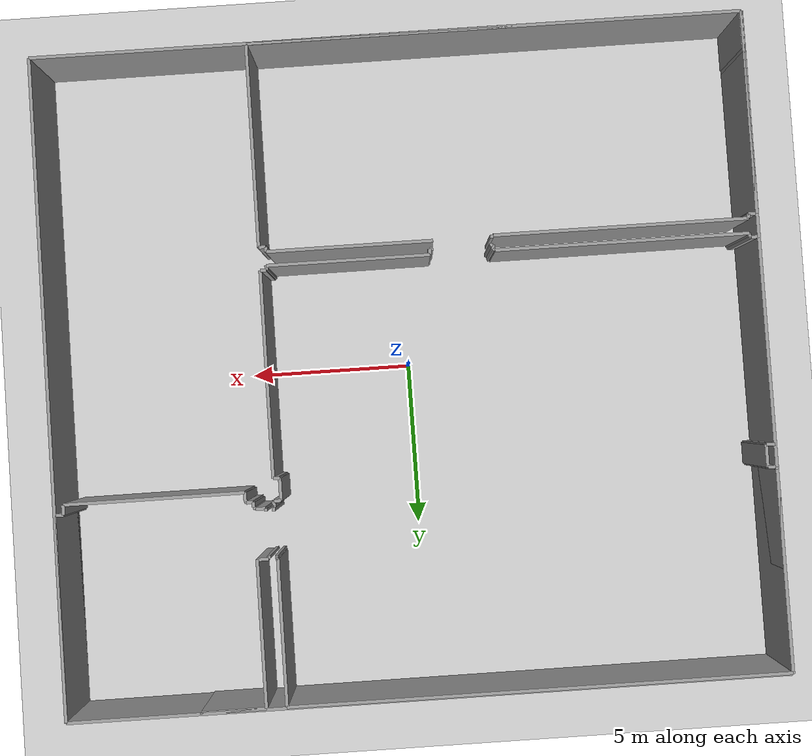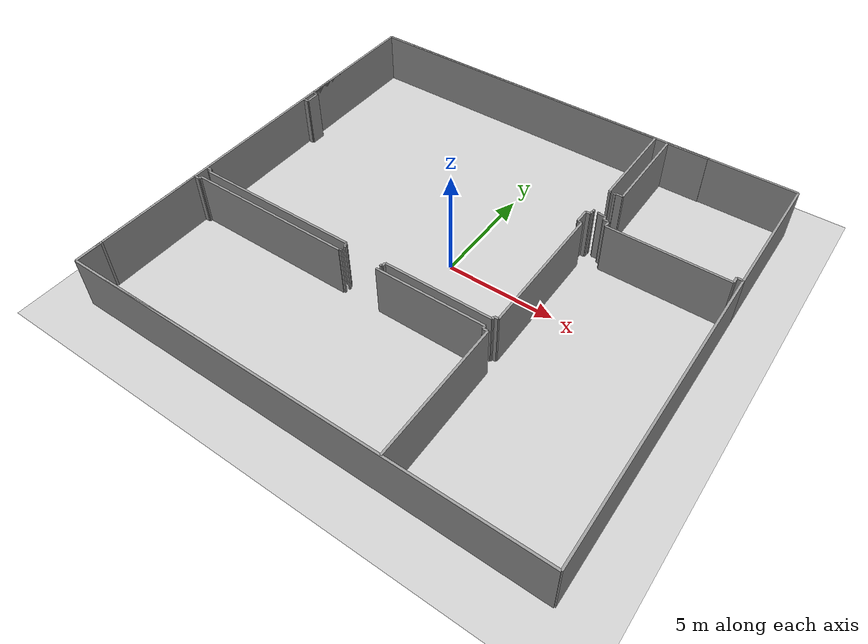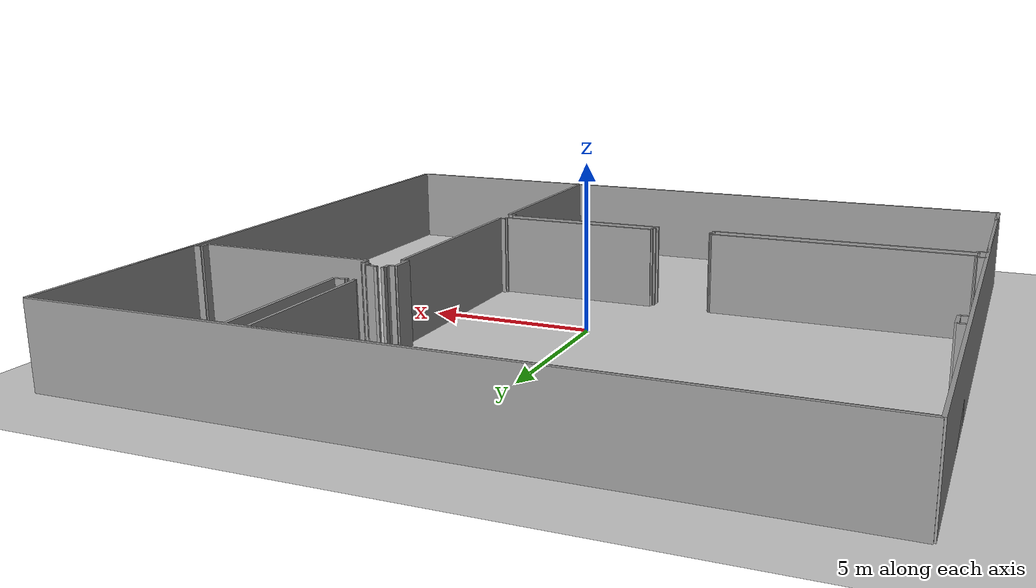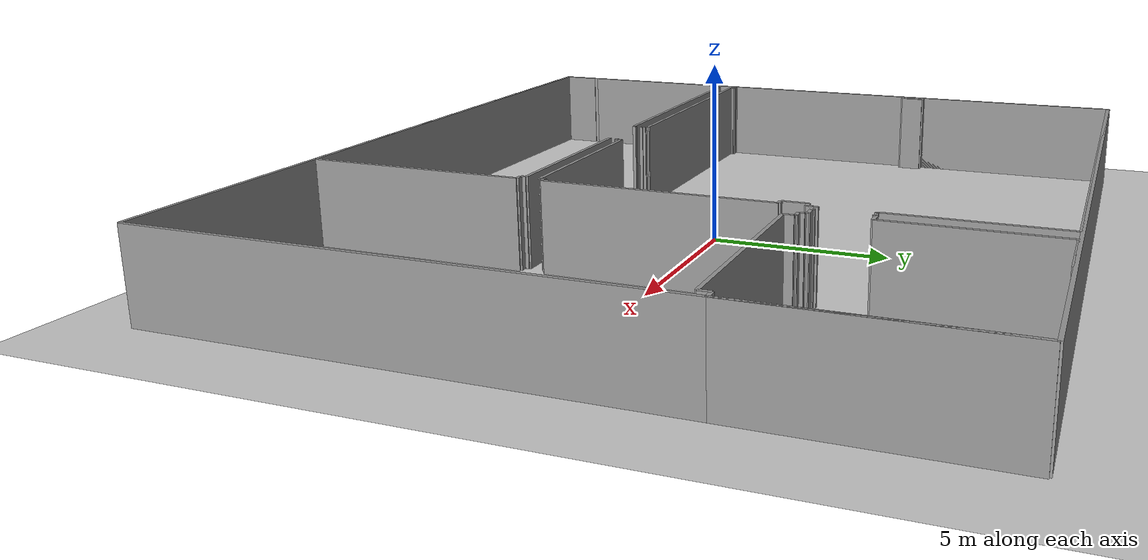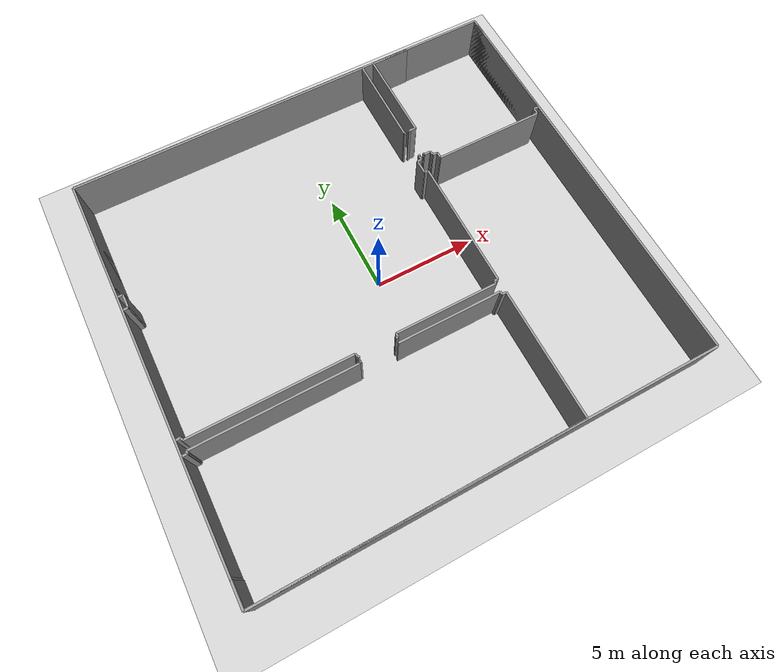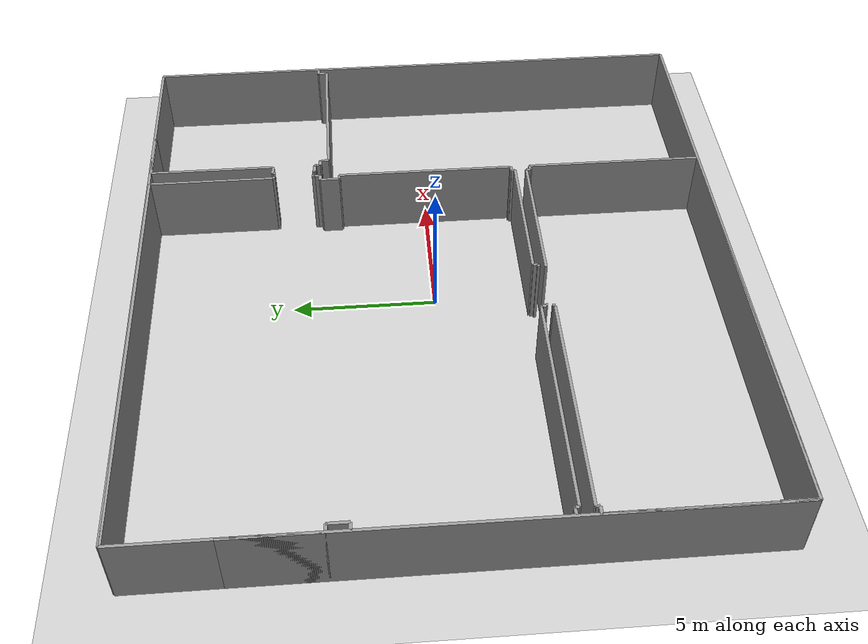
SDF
<sdf version="1.6">
  <world name="default">
    <light name="sun" type="directional">
      <cast_shadows>1</cast_shadows>
      <pose frame="">0 0 10 0 -0 0</pose>
      <diffuse>0.8 0.8 0.8 1</diffuse>
      <specular>0.1 0.1 0.1 1</specular>
      <attenuation>
        <range>1000</range>
        <constant>0.9</constant>
        <linear>0.01</linear>
        <quadratic>0.001</quadratic>
      </attenuation>
      <direction>-0.5 0.5 -1</direction>
    </light>
    <model name="ground_plane">
      <static>1</static>
      <link name="link">
        <collision name="collision">
          <geometry>
            <plane>
              <normal>0 0 1</normal>
              <size>100 100</size>
            </plane>
          </geometry>
          <surface>
            <friction>
              <ode>
                <mu>100</mu>
                <mu2>50</mu2>
              </ode>
              <torsional>
                <ode />
              </torsional>
            </friction>
            <contact>
              <ode />
            </contact>
            <bounce />
          </surface>
          <max_contacts>10</max_contacts>
        </collision>
        <visual name="visual">
          <cast_shadows>0</cast_shadows>
          <geometry>
            <plane>
              <normal>0 0 1</normal>
              <size>100 100</size>
            </plane>
          </geometry>
          <material>
            <script>
              <uri>file://media/materials/scripts/gazebo.material</uri>
              <name>Gazebo/Grey</name>
            </script>
          </material>
        </visual>
        <self_collide>0</self_collide>
        <kinematic>0</kinematic>
        <gravity>1</gravity>
      </link>
    </model>
    <gravity>0 0 -9.8</gravity>
    <magnetic_field>6e-06 2.3e-05 -4.2e-05</magnetic_field>
    <atmosphere type="adiabatic" />
    <physics default="0" name="default_physics" type="ode">
      <max_step_size>0.001</max_step_size>
      <real_time_factor>1</real_time_factor>
      <real_time_update_rate>1000</real_time_update_rate>
    </physics>
    <scene>
      <ambient>0.4 0.4 0.4 1</ambient>
      <background>0.7 0.7 0.7 1</background>
      <shadows>1</shadows>
    </scene>
    <spherical_coordinates>
      <surface_model>EARTH_WGS84</surface_model>
      <latitude_deg>0</latitude_deg>
      <longitude_deg>0</longitude_deg>
      <elevation>0</elevation>
      <heading_deg>0</heading_deg>
    </spherical_coordinates>
  <model name="50055647">
		<static>1</static>
		<link name="Wall_0">
			<collision name="Wall_0_Collision">
				<geometry>
					<box>
						<size>1.15759305037 0.1 2.5</size>
					</box>
				</geometry>
				<pose frame="">0.578796525187 0 1.25 0 0 0</pose>
			</collision>
			<visual name="Wall_0_Visual">
				<pose frame="">0.578796525187 0 1.25 0 0 0</pose>
				<geometry>
					<box>
						<size>1.15759305037 0.1 2.5</size>
					</box>
				</geometry>
				<material>
					<script>
						<uri>file://media/materials/scripts/gazebo.material</uri>
						<name>Gazebo/Grey</name>
					</script>
					<ambient>1 1 1 1</ambient>
				</material>
			</visual>
			<pose frame="">0.0244024885454 -20.1845438196 0 0 0 1.57079632679</pose>
		</link>
		<link name="Wall_1">
			<collision name="Wall_1_Collision">
				<geometry>
					<box>
						<size>0.0222418515388 0.1 2.5</size>
					</box>
				</geometry>
				<pose frame="">0.0111209257694 0 1.25 0 0 0</pose>
			</collision>
			<visual name="Wall_1_Visual">
				<pose frame="">0.0111209257694 0 1.25 0 0 0</pose>
				<geometry>
					<box>
						<size>0.0222418515388 0.1 2.5</size>
					</box>
				</geometry>
				<material>
					<script>
						<uri>file://media/materials/scripts/gazebo.material</uri>
						<name>Gazebo/Grey</name>
					</script>
					<ambient>1 1 1 1</ambient>
				</material>
			</visual>
			<pose frame="">0.0244024885454 -19.0269507693 0 0 0 3.14159265359</pose>
		</link>
		<link name="Wall_2">
			<collision name="Wall_2_Collision">
				<geometry>
					<box>
						<size>0.113115702112 0.1 2.5</size>
					</box>
				</geometry>
				<pose frame="">0.0565578510559 0 1.25 0 0 0</pose>
			</collision>
			<visual name="Wall_2_Visual">
				<pose frame="">0.0565578510559 0 1.25 0 0 0</pose>
				<geometry>
					<box>
						<size>0.113115702112 0.1 2.5</size>
					</box>
				</geometry>
				<material>
					<script>
						<uri>file://media/materials/scripts/gazebo.material</uri>
						<name>Gazebo/Grey</name>
					</script>
					<ambient>1 1 1 1</ambient>
				</material>
			</visual>
			<pose frame="">0.00216063700663 -19.0269507693 0 0 0 1.57079632679</pose>
		</link>
		<link name="Wall_3">
			<collision name="Wall_3_Collision">
				<geometry>
					<box>
						<size>4.98713150018 0.1 2.5</size>
					</box>
				</geometry>
				<pose frame="">2.49356575009 0 1.25 0 0 0</pose>
			</collision>
			<visual name="Wall_3_Visual">
				<pose frame="">2.49356575009 0 1.25 0 0 0</pose>
				<geometry>
					<box>
						<size>4.98713150018 0.1 2.5</size>
					</box>
				</geometry>
				<material>
					<script>
						<uri>file://media/materials/scripts/gazebo.material</uri>
						<name>Gazebo/Grey</name>
					</script>
					<ambient>1 1 1 1</ambient>
				</material>
			</visual>
			<pose frame="">0.00216063700663 -18.9138350671 0 0 0 1.57079632679</pose>
		</link>
		<link name="Wall_4">
			<collision name="Wall_4_Collision">
				<geometry>
					<box>
						<size>0.268300277705 0.1 2.5</size>
					</box>
				</geometry>
				<pose frame="">0.134150138853 0 1.25 0 0 0</pose>
			</collision>
			<visual name="Wall_4_Visual">
				<pose frame="">0.134150138853 0 1.25 0 0 0</pose>
				<geometry>
					<box>
						<size>0.268300277705 0.1 2.5</size>
					</box>
				</geometry>
				<material>
					<script>
						<uri>file://media/materials/scripts/gazebo.material</uri>
						<name>Gazebo/Grey</name>
					</script>
					<ambient>1 1 1 1</ambient>
				</material>
			</visual>
			<pose frame="">0.00216063700663 -13.926703567 0 0 0 0.0</pose>
		</link>
		<link name="Wall_5">
			<collision name="Wall_5_Collision">
				<geometry>
					<box>
						<size>0.128748546336 0.1 2.5</size>
					</box>
				</geometry>
				<pose frame="">0.0643742731681 0 1.25 0 0 0</pose>
			</collision>
			<visual name="Wall_5_Visual">
				<pose frame="">0.0643742731681 0 1.25 0 0 0</pose>
				<geometry>
					<box>
						<size>0.128748546336 0.1 2.5</size>
					</box>
				</geometry>
				<material>
					<script>
						<uri>file://media/materials/scripts/gazebo.material</uri>
						<name>Gazebo/Grey</name>
					</script>
					<ambient>1 1 1 1</ambient>
				</material>
			</visual>
			<pose frame="">0.270460914712 -13.926703567 0 0 0 1.57079632679</pose>
		</link>
		<link name="Wall_6">
			<collision name="Wall_6_Collision">
				<geometry>
					<box>
						<size>7.79443445326 0.1 2.5</size>
					</box>
				</geometry>
				<pose frame="">3.89721722663 0 1.25 0 0 0</pose>
			</collision>
			<visual name="Wall_6_Visual">
				<pose frame="">3.89721722663 0 1.25 0 0 0</pose>
				<geometry>
					<box>
						<size>7.79443445326 0.1 2.5</size>
					</box>
				</geometry>
				<material>
					<script>
						<uri>file://media/materials/scripts/gazebo.material</uri>
						<name>Gazebo/Grey</name>
					</script>
					<ambient>1 1 1 1</ambient>
				</material>
			</visual>
			<pose frame="">0.270460914712 -13.7979550206 0 0 0 0.0</pose>
		</link>
		<link name="Wall_7">
			<collision name="Wall_7_Collision">
				<geometry>
					<box>
						<size>0.0374934068797 0.1 2.5</size>
					</box>
				</geometry>
				<pose frame="">0.0187467034399 0 1.25 0 0 0</pose>
			</collision>
			<visual name="Wall_7_Visual">
				<pose frame="">0.0187467034399 0 1.25 0 0 0</pose>
				<geometry>
					<box>
						<size>0.0374934068797 0.1 2.5</size>
					</box>
				</geometry>
				<material>
					<script>
						<uri>file://media/materials/scripts/gazebo.material</uri>
						<name>Gazebo/Grey</name>
					</script>
					<ambient>1 1 1 1</ambient>
				</material>
			</visual>
			<pose frame="">8.06489536798 -13.7979550206 0 0 0 1.57079632679</pose>
		</link>
		<link name="Wall_8">
			<collision name="Wall_8_Collision">
				<geometry>
					<box>
						<size>0.0955764134697 0.1 2.5</size>
					</box>
				</geometry>
				<pose frame="">0.0477882067348 0 1.25 0 0 0</pose>
			</collision>
			<visual name="Wall_8_Visual">
				<pose frame="">0.0477882067348 0 1.25 0 0 0</pose>
				<geometry>
					<box>
						<size>0.0955764134697 0.1 2.5</size>
					</box>
				</geometry>
				<material>
					<script>
						<uri>file://media/materials/scripts/gazebo.material</uri>
						<name>Gazebo/Grey</name>
					</script>
					<ambient>1 1 1 1</ambient>
				</material>
			</visual>
			<pose frame="">8.06489536798 -13.7604616137 0 0 0 0.0</pose>
		</link>
		<link name="Wall_9">
			<collision name="Wall_9_Collision">
				<geometry>
					<box>
						<size>5.08906272838 0.1 2.5</size>
					</box>
				</geometry>
				<pose frame="">2.54453136419 0 1.25 0 0 0</pose>
			</collision>
			<visual name="Wall_9_Visual">
				<pose frame="">2.54453136419 0 1.25 0 0 0</pose>
				<geometry>
					<box>
						<size>5.08906272838 0.1 2.5</size>
					</box>
				</geometry>
				<material>
					<script>
						<uri>file://media/materials/scripts/gazebo.material</uri>
						<name>Gazebo/Grey</name>
					</script>
					<ambient>1 1 1 1</ambient>
				</material>
			</visual>
			<pose frame="">9.90550390503 -13.7604616137 0 0 0 0.0</pose>
		</link>
		<link name="Wall_10">
			<collision name="Wall_10_Collision">
				<geometry>
					<box>
						<size>0.148194279396 0.1 2.5</size>
					</box>
				</geometry>
				<pose frame="">0.0740971396979 0 1.25 0 0 0</pose>
			</collision>
			<visual name="Wall_10_Visual">
				<pose frame="">0.0740971396979 0 1.25 0 0 0</pose>
				<geometry>
					<box>
						<size>0.148194279396 0.1 2.5</size>
					</box>
				</geometry>
				<material>
					<script>
						<uri>file://media/materials/scripts/gazebo.material</uri>
						<name>Gazebo/Grey</name>
					</script>
					<ambient>1 1 1 1</ambient>
				</material>
			</visual>
			<pose frame="">14.9945666334 -13.7604616137 0 0 0 -1.57079632679</pose>
		</link>
		<link name="Wall_11">
			<collision name="Wall_11_Collision">
				<geometry>
					<box>
						<size>0.218605626553 0.1 2.5</size>
					</box>
				</geometry>
				<pose frame="">0.109302813276 0 1.25 0 0 0</pose>
			</collision>
			<visual name="Wall_11_Visual">
				<pose frame="">0.109302813276 0 1.25 0 0 0</pose>
				<geometry>
					<box>
						<size>0.218605626553 0.1 2.5</size>
					</box>
				</geometry>
				<material>
					<script>
						<uri>file://media/materials/scripts/gazebo.material</uri>
						<name>Gazebo/Grey</name>
					</script>
					<ambient>1 1 1 1</ambient>
				</material>
			</visual>
			<pose frame="">14.9945666334 -13.9086558931 0 0 0 0.0</pose>
		</link>
		<link name="Wall_12">
			<collision name="Wall_12_Collision">
				<geometry>
					<box>
						<size>6.27232923024 0.1 2.5</size>
					</box>
				</geometry>
				<pose frame="">3.13616461512 0 1.25 0 0 0</pose>
			</collision>
			<visual name="Wall_12_Visual">
				<pose frame="">3.13616461512 0 1.25 0 0 0</pose>
				<geometry>
					<box>
						<size>6.27232923024 0.1 2.5</size>
					</box>
				</geometry>
				<material>
					<script>
						<uri>file://media/materials/scripts/gazebo.material</uri>
						<name>Gazebo/Grey</name>
					</script>
					<ambient>1 1 1 1</ambient>
				</material>
			</visual>
			<pose frame="">15.21317226 -13.9086558931 0 0 0 -1.57079632679</pose>
		</link>
		<link name="Wall_13">
			<collision name="Wall_13_Collision">
				<geometry>
					<box>
						<size>15.1887701883 0.1 2.5</size>
					</box>
				</geometry>
				<pose frame="">7.59438509416 0 1.25 0 0 0</pose>
			</collision>
			<visual name="Wall_13_Visual">
				<pose frame="">7.59438509416 0 1.25 0 0 0</pose>
				<geometry>
					<box>
						<size>15.1887701883 0.1 2.5</size>
					</box>
				</geometry>
				<material>
					<script>
						<uri>file://media/materials/scripts/gazebo.material</uri>
						<name>Gazebo/Grey</name>
					</script>
					<ambient>1 1 1 1</ambient>
				</material>
			</visual>
			<pose frame="">15.21317226 -20.1809851234 0 0 0 -3.14135835573</pose>
		</link>
		<link name="Wall_14">
			<collision name="Wall_14_Collision">
				<geometry>
					<box>
						<size>0.278156418148 0.1 2.5</size>
					</box>
				</geometry>
				<pose frame="">0.139078209074 0 1.25 0 0 0</pose>
			</collision>
			<visual name="Wall_14_Visual">
				<pose frame="">0.139078209074 0 1.25 0 0 0</pose>
				<geometry>
					<box>
						<size>0.278156418148 0.1 2.5</size>
					</box>
				</geometry>
				<material>
					<script>
						<uri>file://media/materials/scripts/gazebo.material</uri>
						<name>Gazebo/Grey</name>
					</script>
					<ambient>1 1 1 1</ambient>
				</material>
			</visual>
			<pose frame="">16.101321166 -6.52029410083 0 0 0 1.59318746518</pose>
		</link>
		<link name="Wall_15">
			<collision name="Wall_15_Collision">
				<geometry>
					<box>
						<size>0.0446658043129 0.1 2.5</size>
					</box>
				</geometry>
				<pose frame="">0.0223329021564 0 1.25 0 0 0</pose>
			</collision>
			<visual name="Wall_15_Visual">
				<pose frame="">0.0223329021564 0 1.25 0 0 0</pose>
				<geometry>
					<box>
						<size>0.0446658043129 0.1 2.5</size>
					</box>
				</geometry>
				<material>
					<script>
						<uri>file://media/materials/scripts/gazebo.material</uri>
						<name>Gazebo/Grey</name>
					</script>
					<ambient>1 1 1 1</ambient>
				</material>
			</visual>
			<pose frame="">16.0950934476 -6.24220740844 0 0 0 2.35820655991</pose>
		</link>
		<link name="Wall_16">
			<collision name="Wall_16_Collision">
				<geometry>
					<box>
						<size>0.208565019287 0.1 2.5</size>
					</box>
				</geometry>
				<pose frame="">0.104282509643 0 1.25 0 0 0</pose>
			</collision>
			<visual name="Wall_16_Visual">
				<pose frame="">0.104282509643 0 1.25 0 0 0</pose>
				<geometry>
					<box>
						<size>0.208565019287 0.1 2.5</size>
					</box>
				</geometry>
				<material>
					<script>
						<uri>file://media/materials/scripts/gazebo.material</uri>
						<name>Gazebo/Grey</name>
					</script>
					<ambient>1 1 1 1</ambient>
				</material>
			</visual>
			<pose frame="">16.0634464702 -6.21068752741 0 0 0 3.14159265359</pose>
		</link>
		<link name="Wall_17">
			<collision name="Wall_17_Collision">
				<geometry>
					<box>
						<size>0.151625879347 0.1 2.5</size>
					</box>
				</geometry>
				<pose frame="">0.0758129396737 0 1.25 0 0 0</pose>
			</collision>
			<visual name="Wall_17_Visual">
				<pose frame="">0.0758129396737 0 1.25 0 0 0</pose>
				<geometry>
					<box>
						<size>0.151625879347 0.1 2.5</size>
					</box>
				</geometry>
				<material>
					<script>
						<uri>file://media/materials/scripts/gazebo.material</uri>
						<name>Gazebo/Grey</name>
					</script>
					<ambient>1 1 1 1</ambient>
				</material>
			</visual>
			<pose frame="">15.8548814509 -6.21068752741 0 0 0 1.57079632679</pose>
		</link>
		<link name="Wall_18">
			<collision name="Wall_18_Collision">
				<geometry>
					<box>
						<size>0.0760788906811 0.1 2.5</size>
					</box>
				</geometry>
				<pose frame="">0.0380394453406 0 1.25 0 0 0</pose>
			</collision>
			<visual name="Wall_18_Visual">
				<pose frame="">0.0380394453406 0 1.25 0 0 0</pose>
				<geometry>
					<box>
						<size>0.0760788906811 0.1 2.5</size>
					</box>
				</geometry>
				<material>
					<script>
						<uri>file://media/materials/scripts/gazebo.material</uri>
						<name>Gazebo/Grey</name>
					</script>
					<ambient>1 1 1 1</ambient>
				</material>
			</visual>
			<pose frame="">15.8548814509 -6.05906164806 0 0 0 2.29591258653</pose>
		</link>
		<link name="Wall_19">
			<collision name="Wall_19_Collision">
				<geometry>
					<box>
						<size>0.30960657342 0.1 2.5</size>
					</box>
				</geometry>
				<pose frame="">0.15480328671 0 1.25 0 0 0</pose>
			</collision>
			<visual name="Wall_19_Visual">
				<pose frame="">0.15480328671 0 1.25 0 0 0</pose>
				<geometry>
					<box>
						<size>0.30960657342 0.1 2.5</size>
					</box>
				</geometry>
				<material>
					<script>
						<uri>file://media/materials/scripts/gazebo.material</uri>
						<name>Gazebo/Grey</name>
					</script>
					<ambient>1 1 1 1</ambient>
				</material>
			</visual>
			<pose frame="">15.804424222 -6.00212250812 0 0 0 3.14159265359</pose>
		</link>
		<link name="Wall_20">
			<collision name="Wall_20_Collision">
				<geometry>
					<box>
						<size>0.0821042062519 0.1 2.5</size>
					</box>
				</geometry>
				<pose frame="">0.0410521031259 0 1.25 0 0 0</pose>
			</collision>
			<visual name="Wall_20_Visual">
				<pose frame="">0.0410521031259 0 1.25 0 0 0</pose>
				<geometry>
					<box>
						<size>0.0821042062519 0.1 2.5</size>
					</box>
				</geometry>
				<material>
					<script>
						<uri>file://media/materials/scripts/gazebo.material</uri>
						<name>Gazebo/Grey</name>
					</script>
					<ambient>1 1 1 1</ambient>
				</material>
			</visual>
			<pose frame="">15.4948176486 -6.00212250812 0 0 0 1.57079632679</pose>
		</link>
		<link name="Wall_21">
			<collision name="Wall_21_Collision">
				<geometry>
					<box>
						<size>0.0903654653949 0.1 2.5</size>
					</box>
				</geometry>
				<pose frame="">0.0451827326974 0 1.25 0 0 0</pose>
			</collision>
			<visual name="Wall_21_Visual">
				<pose frame="">0.0451827326974 0 1.25 0 0 0</pose>
				<geometry>
					<box>
						<size>0.0903654653949 0.1 2.5</size>
					</box>
				</geometry>
				<material>
					<script>
						<uri>file://media/materials/scripts/gazebo.material</uri>
						<name>Gazebo/Grey</name>
					</script>
					<ambient>1 1 1 1</ambient>
				</material>
			</visual>
			<pose frame="">15.4948176486 -4.5702556542 0 0 0 1.57079632679</pose>
		</link>
		<link name="Wall_22">
			<collision name="Wall_22_Collision">
				<geometry>
					<box>
						<size>0.353073506142 0.1 2.5</size>
					</box>
				</geometry>
				<pose frame="">0.176536753071 0 1.25 0 0 0</pose>
			</collision>
			<visual name="Wall_22_Visual">
				<pose frame="">0.176536753071 0 1.25 0 0 0</pose>
				<geometry>
					<box>
						<size>0.353073506142 0.1 2.5</size>
					</box>
				</geometry>
				<material>
					<script>
						<uri>file://media/materials/scripts/gazebo.material</uri>
						<name>Gazebo/Grey</name>
					</script>
					<ambient>1 1 1 1</ambient>
				</material>
			</visual>
			<pose frame="">15.4948176486 -4.4798901888 0 0 0 0.0</pose>
		</link>
		<link name="Wall_23">
			<collision name="Wall_23_Collision">
				<geometry>
					<box>
						<size>4.44684515223 0.1 2.5</size>
					</box>
				</geometry>
				<pose frame="">2.22342257611 0 1.25 0 0 0</pose>
			</collision>
			<visual name="Wall_23_Visual">
				<pose frame="">2.22342257611 0 1.25 0 0 0</pose>
				<geometry>
					<box>
						<size>4.44684515223 0.1 2.5</size>
					</box>
				</geometry>
				<material>
					<script>
						<uri>file://media/materials/scripts/gazebo.material</uri>
						<name>Gazebo/Grey</name>
					</script>
					<ambient>1 1 1 1</ambient>
				</material>
			</visual>
			<pose frame="">15.8478911547 -4.4798901888 0 0 0 1.57079632679</pose>
		</link>
		<link name="Wall_24">
			<collision name="Wall_24_Collision">
				<geometry>
					<box>
						<size>1.94749652074 0.1 2.5</size>
					</box>
				</geometry>
				<pose frame="">0.973748260369 0 1.25 0 0 0</pose>
			</collision>
			<visual name="Wall_24_Visual">
				<pose frame="">0.973748260369 0 1.25 0 0 0</pose>
				<geometry>
					<box>
						<size>1.94749652074 0.1 2.5</size>
					</box>
				</geometry>
				<material>
					<script>
						<uri>file://media/materials/scripts/gazebo.material</uri>
						<name>Gazebo/Grey</name>
					</script>
					<ambient>1 1 1 1</ambient>
				</material>
			</visual>
			<pose frame="">15.8478911547 -0.033045036572 0 0 0 0.0</pose>
		</link>
		<link name="Wall_25">
			<collision name="Wall_25_Collision">
				<geometry>
					<box>
						<size>0.033045036572 0.1 2.5</size>
					</box>
				</geometry>
				<pose frame="">0.016522518286 0 1.25 0 0 0</pose>
			</collision>
			<visual name="Wall_25_Visual">
				<pose frame="">0.016522518286 0 1.25 0 0 0</pose>
				<geometry>
					<box>
						<size>0.033045036572 0.1 2.5</size>
					</box>
				</geometry>
				<material>
					<script>
						<uri>file://media/materials/scripts/gazebo.material</uri>
						<name>Gazebo/Grey</name>
					</script>
					<ambient>1 1 1 1</ambient>
				</material>
			</visual>
			<pose frame="">17.7953876755 -0.033045036572 0 0 0 1.57079632679</pose>
		</link>
		<link name="Wall_26">
			<collision name="Wall_26_Collision">
				<geometry>
					<box>
						<size>6.20916237187 0.1 2.5</size>
					</box>
				</geometry>
				<pose frame="">3.10458118594 0 1.25 0 0 0</pose>
			</collision>
			<visual name="Wall_26_Visual">
				<pose frame="">3.10458118594 0 1.25 0 0 0</pose>
				<geometry>
					<box>
						<size>6.20916237187 0.1 2.5</size>
					</box>
				</geometry>
				<material>
					<script>
						<uri>file://media/materials/scripts/gazebo.material</uri>
						<name>Gazebo/Grey</name>
					</script>
					<ambient>1 1 1 1</ambient>
				</material>
			</visual>
			<pose frame="">21.8706032626 -0.0 0 0 0 -1.57079632679</pose>
		</link>
		<link name="Wall_27">
			<collision name="Wall_27_Collision">
				<geometry>
					<box>
						<size>0.272875744308 0.1 2.5</size>
					</box>
				</geometry>
				<pose frame="">0.136437872154 0 1.25 0 0 0</pose>
			</collision>
			<visual name="Wall_27_Visual">
				<pose frame="">0.136437872154 0 1.25 0 0 0</pose>
				<geometry>
					<box>
						<size>0.272875744308 0.1 2.5</size>
					</box>
				</geometry>
				<material>
					<script>
						<uri>file://media/materials/scripts/gazebo.material</uri>
						<name>Gazebo/Grey</name>
					</script>
					<ambient>1 1 1 1</ambient>
				</material>
			</visual>
			<pose frame="">21.8706032626 -6.20916237187 0 0 0 3.14159265359</pose>
		</link>
		<link name="Wall_28">
			<collision name="Wall_28_Collision">
				<geometry>
					<box>
						<size>0.304649817935 0.1 2.5</size>
					</box>
				</geometry>
				<pose frame="">0.152324908967 0 1.25 0 0 0</pose>
			</collision>
			<visual name="Wall_28_Visual">
				<pose frame="">0.152324908967 0 1.25 0 0 0</pose>
				<geometry>
					<box>
						<size>0.304649817935 0.1 2.5</size>
					</box>
				</geometry>
				<material>
					<script>
						<uri>file://media/materials/scripts/gazebo.material</uri>
						<name>Gazebo/Grey</name>
					</script>
					<ambient>1 1 1 1</ambient>
				</material>
			</visual>
			<pose frame="">21.5977275183 -6.20916237187 0 0 0 -1.57079632679</pose>
		</link>
		<link name="Wall_29">
			<collision name="Wall_29_Collision">
				<geometry>
					<box>
						<size>5.49641017433 0.1 2.5</size>
					</box>
				</geometry>
				<pose frame="">2.74820508716 0 1.25 0 0 0</pose>
			</collision>
			<visual name="Wall_29_Visual">
				<pose frame="">2.74820508716 0 1.25 0 0 0</pose>
				<geometry>
					<box>
						<size>5.49641017433 0.1 2.5</size>
					</box>
				</geometry>
				<material>
					<script>
						<uri>file://media/materials/scripts/gazebo.material</uri>
						<name>Gazebo/Grey</name>
					</script>
					<ambient>1 1 1 1</ambient>
				</material>
			</visual>
			<pose frame="">21.5977275183 -6.51381218981 0 0 0 -3.14041335432</pose>
		</link>
		<link name="Wall_30">
			<collision name="Wall_30_Collision">
				<geometry>
					<box>
						<size>0.270460914712 0.1 2.5</size>
					</box>
				</geometry>
				<pose frame="">0.135230457356 0 1.25 0 0 0</pose>
			</collision>
			<visual name="Wall_30_Visual">
				<pose frame="">0.135230457356 0 1.25 0 0 0</pose>
				<geometry>
					<box>
						<size>0.270460914712 0.1 2.5</size>
					</box>
				</geometry>
				<material>
					<script>
						<uri>file://media/materials/scripts/gazebo.material</uri>
						<name>Gazebo/Grey</name>
					</script>
					<ambient>1 1 1 1</ambient>
				</material>
			</visual>
			<pose frame="">0.00190644441761 -6.90069331029 0 0 0 0.0</pose>
		</link>
		<link name="Wall_31">
			<collision name="Wall_31_Collision">
				<geometry>
					<box>
						<size>0.683269679273 0.1 2.5</size>
					</box>
				</geometry>
				<pose frame="">0.341634839636 0 1.25 0 0 0</pose>
			</collision>
			<visual name="Wall_31_Visual">
				<pose frame="">0.341634839636 0 1.25 0 0 0</pose>
				<geometry>
					<box>
						<size>0.683269679273 0.1 2.5</size>
					</box>
				</geometry>
				<material>
					<script>
						<uri>file://media/materials/scripts/gazebo.material</uri>
						<name>Gazebo/Grey</name>
					</script>
					<ambient>1 1 1 1</ambient>
				</material>
			</visual>
			<pose frame="">0.27236735913 -6.90069331029 0 0 0 1.57079632679</pose>
		</link>
		<link name="Wall_32">
			<collision name="Wall_32_Collision">
				<geometry>
					<box>
						<size>0.27236735913 0.1 2.5</size>
					</box>
				</geometry>
				<pose frame="">0.136183679565 0 1.25 0 0 0</pose>
			</collision>
			<visual name="Wall_32_Visual">
				<pose frame="">0.136183679565 0 1.25 0 0 0</pose>
				<geometry>
					<box>
						<size>0.27236735913 0.1 2.5</size>
					</box>
				</geometry>
				<material>
					<script>
						<uri>file://media/materials/scripts/gazebo.material</uri>
						<name>Gazebo/Grey</name>
					</script>
					<ambient>1 1 1 1</ambient>
				</material>
			</visual>
			<pose frame="">0.27236735913 -6.21742363101 0 0 0 3.14159265359</pose>
		</link>
		<link name="Wall_33">
			<collision name="Wall_33_Collision">
				<geometry>
					<box>
						<size>0.076384872999 0.1 2.5</size>
					</box>
				</geometry>
				<pose frame="">0.0381924364995 0 1.25 0 0 0</pose>
			</collision>
			<visual name="Wall_33_Visual">
				<pose frame="">0.0381924364995 0 1.25 0 0 0</pose>
				<geometry>
					<box>
						<size>0.076384872999 0.1 2.5</size>
					</box>
				</geometry>
				<material>
					<script>
						<uri>file://media/materials/scripts/gazebo.material</uri>
						<name>Gazebo/Grey</name>
					</script>
					<ambient>1 1 1 1</ambient>
				</material>
			</visual>
			<pose frame="">0.0 -6.21742363101 0 0 0 1.57079632679</pose>
		</link>
		<link name="Wall_34">
			<collision name="Wall_34_Collision">
				<geometry>
					<box>
						<size>2.99820158743 0.1 2.5</size>
					</box>
				</geometry>
				<pose frame="">1.49910079372 0 1.25 0 0 0</pose>
			</collision>
			<visual name="Wall_34_Visual">
				<pose frame="">1.49910079372 0 1.25 0 0 0</pose>
				<geometry>
					<box>
						<size>2.99820158743 0.1 2.5</size>
					</box>
				</geometry>
				<material>
					<script>
						<uri>file://media/materials/scripts/gazebo.material</uri>
						<name>Gazebo/Grey</name>
					</script>
					<ambient>1 1 1 1</ambient>
				</material>
			</visual>
			<pose frame="">0.0 -6.14103875802 0 0 0 1.57079632679</pose>
		</link>
		<link name="Wall_35">
			<collision name="Wall_35_Collision">
				<geometry>
					<box>
						<size>15.2275341412 0.1 2.5</size>
					</box>
				</geometry>
				<pose frame="">7.61376707062 0 1.25 0 0 0</pose>
			</collision>
			<visual name="Wall_35_Visual">
				<pose frame="">7.61376707062 0 1.25 0 0 0</pose>
				<geometry>
					<box>
						<size>15.2275341412 0.1 2.5</size>
					</box>
				</geometry>
				<material>
					<script>
						<uri>file://media/materials/scripts/gazebo.material</uri>
						<name>Gazebo/Grey</name>
					</script>
					<ambient>1 1 1 1</ambient>
				</material>
			</visual>
			<pose frame="">0.0 -0.0254192589015 0 0 0 0.0</pose>
		</link>
		<link name="Wall_36">
			<collision name="Wall_36_Collision">
				<geometry>
					<box>
						<size>4.449768367 0.1 2.5</size>
					</box>
				</geometry>
				<pose frame="">2.2248841835 0 1.25 0 0 0</pose>
			</collision>
			<visual name="Wall_36_Visual">
				<pose frame="">2.2248841835 0 1.25 0 0 0</pose>
				<geometry>
					<box>
						<size>4.449768367 0.1 2.5</size>
					</box>
				</geometry>
				<material>
					<script>
						<uri>file://media/materials/scripts/gazebo.material</uri>
						<name>Gazebo/Grey</name>
					</script>
					<ambient>1 1 1 1</ambient>
				</material>
			</visual>
			<pose frame="">15.2275341412 -0.0254192589015 0 0 0 -1.57079632679</pose>
		</link>
		<link name="Wall_37">
			<collision name="Wall_37_Collision">
				<geometry>
					<box>
						<size>0.0278340884971 0.1 2.5</size>
					</box>
				</geometry>
				<pose frame="">0.0139170442486 0 1.25 0 0 0</pose>
			</collision>
			<visual name="Wall_37_Visual">
				<pose frame="">0.0139170442486 0 1.25 0 0 0</pose>
				<geometry>
					<box>
						<size>0.0278340884971 0.1 2.5</size>
					</box>
				</geometry>
				<material>
					<script>
						<uri>file://media/materials/scripts/gazebo.material</uri>
						<name>Gazebo/Grey</name>
					</script>
					<ambient>1 1 1 1</ambient>
				</material>
			</visual>
			<pose frame="">15.2275341412 -4.4751876259 0 0 0 0.0</pose>
		</link>
		<link name="Wall_38">
			<collision name="Wall_38_Collision">
				<geometry>
					<box>
						<size>0.093415776463 0.1 2.5</size>
					</box>
				</geometry>
				<pose frame="">0.0467078882315 0 1.25 0 0 0</pose>
			</collision>
			<visual name="Wall_38_Visual">
				<pose frame="">0.0467078882315 0 1.25 0 0 0</pose>
				<geometry>
					<box>
						<size>0.093415776463 0.1 2.5</size>
					</box>
				</geometry>
				<material>
					<script>
						<uri>file://media/materials/scripts/gazebo.material</uri>
						<name>Gazebo/Grey</name>
					</script>
					<ambient>1 1 1 1</ambient>
				</material>
			</visual>
			<pose frame="">15.2553682297 -4.4751876259 0 0 0 -1.57079632679</pose>
		</link>
		<link name="Wall_39">
			<collision name="Wall_39_Collision">
				<geometry>
					<box>
						<size>0.117564072419 0.1 2.5</size>
					</box>
				</geometry>
				<pose frame="">0.0587820362097 0 1.25 0 0 0</pose>
			</collision>
			<visual name="Wall_39_Visual">
				<pose frame="">0.0587820362097 0 1.25 0 0 0</pose>
				<geometry>
					<box>
						<size>0.117564072419 0.1 2.5</size>
					</box>
				</geometry>
				<material>
					<script>
						<uri>file://media/materials/scripts/gazebo.material</uri>
						<name>Gazebo/Grey</name>
					</script>
					<ambient>1 1 1 1</ambient>
				</material>
			</visual>
			<pose frame="">15.2553682297 -5.90158933916 0 0 0 -1.57079632679</pose>
		</link>
		<link name="Wall_40">
			<collision name="Wall_40_Collision">
				<geometry>
					<box>
						<size>0.0176663849365 0.1 2.5</size>
					</box>
				</geometry>
				<pose frame="">0.00883319246827 0 1.25 0 0 0</pose>
			</collision>
			<visual name="Wall_40_Visual">
				<pose frame="">0.00883319246827 0 1.25 0 0 0</pose>
				<geometry>
					<box>
						<size>0.0176663849365 0.1 2.5</size>
					</box>
				</geometry>
				<material>
					<script>
						<uri>file://media/materials/scripts/gazebo.material</uri>
						<name>Gazebo/Grey</name>
					</script>
					<ambient>1 1 1 1</ambient>
				</material>
			</visual>
			<pose frame="">15.2553682297 -6.01915341158 0 0 0 3.14159265359</pose>
		</link>
		<link name="Wall_41">
			<collision name="Wall_41_Collision">
				<geometry>
					<box>
						<size>0.185687686276 0.1 2.5</size>
					</box>
				</geometry>
				<pose frame="">0.0928438431378 0 1.25 0 0 0</pose>
			</collision>
			<visual name="Wall_41_Visual">
				<pose frame="">0.0928438431378 0 1.25 0 0 0</pose>
				<geometry>
					<box>
						<size>0.185687686276 0.1 2.5</size>
					</box>
				</geometry>
				<material>
					<script>
						<uri>file://media/materials/scripts/gazebo.material</uri>
						<name>Gazebo/Grey</name>
					</script>
					<ambient>1 1 1 1</ambient>
				</material>
			</visual>
			<pose frame="">15.2377018448 -6.01915341158 0 0 0 -1.57079632679</pose>
		</link>
		<link name="Wall_42">
			<collision name="Wall_42_Collision">
				<geometry>
					<box>
						<size>0.218605626553 0.1 2.5</size>
					</box>
				</geometry>
				<pose frame="">0.109302813276 0 1.25 0 0 0</pose>
			</collision>
			<visual name="Wall_42_Visual">
				<pose frame="">0.109302813276 0 1.25 0 0 0</pose>
				<geometry>
					<box>
						<size>0.218605626553 0.1 2.5</size>
					</box>
				</geometry>
				<material>
					<script>
						<uri>file://media/materials/scripts/gazebo.material</uri>
						<name>Gazebo/Grey</name>
					</script>
					<ambient>1 1 1 1</ambient>
				</material>
			</visual>
			<pose frame="">15.2377018448 -6.20484109786 0 0 0 3.14159265359</pose>
		</link>
		<link name="Wall_43">
			<collision name="Wall_43_Collision">
				<geometry>
					<box>
						<size>0.685684508868 0.1 2.5</size>
					</box>
				</geometry>
				<pose frame="">0.342842254434 0 1.25 0 0 0</pose>
			</collision>
			<visual name="Wall_43_Visual">
				<pose frame="">0.342842254434 0 1.25 0 0 0</pose>
				<geometry>
					<box>
						<size>0.685684508868 0.1 2.5</size>
					</box>
				</geometry>
				<material>
					<script>
						<uri>file://media/materials/scripts/gazebo.material</uri>
						<name>Gazebo/Grey</name>
					</script>
					<ambient>1 1 1 1</ambient>
				</material>
			</visual>
			<pose frame="">15.0190962182 -6.20484109786 0 0 0 -1.57079632679</pose>
		</link>
		<link name="Wall_44">
			<collision name="Wall_44_Collision">
				<geometry>
					<box>
						<size>0.194076041713 0.1 2.5</size>
					</box>
				</geometry>
				<pose frame="">0.0970380208565 0 1.25 0 0 0</pose>
			</collision>
			<visual name="Wall_44_Visual">
				<pose frame="">0.0970380208565 0 1.25 0 0 0</pose>
				<geometry>
					<box>
						<size>0.194076041713 0.1 2.5</size>
					</box>
				</geometry>
				<material>
					<script>
						<uri>file://media/materials/scripts/gazebo.material</uri>
						<name>Gazebo/Grey</name>
					</script>
					<ambient>1 1 1 1</ambient>
				</material>
			</visual>
			<pose frame="">15.0190962182 -6.89052560673 0 0 0 0.0</pose>
		</link>
		<link name="Wall_45">
			<collision name="Wall_45_Collision">
				<geometry>
					<box>
						<size>6.31236456301 0.1 2.5</size>
					</box>
				</geometry>
				<pose frame="">3.15618228151 0 1.25 0 0 0</pose>
			</collision>
			<visual name="Wall_45_Visual">
				<pose frame="">3.15618228151 0 1.25 0 0 0</pose>
				<geometry>
					<box>
						<size>6.31236456301 0.1 2.5</size>
					</box>
				</geometry>
				<material>
					<script>
						<uri>file://media/materials/scripts/gazebo.material</uri>
						<name>Gazebo/Grey</name>
					</script>
					<ambient>1 1 1 1</ambient>
				</material>
			</visual>
			<pose frame="">15.21317226 -6.89052560673 0 0 0 -1.57079632679</pose>
		</link>
		<link name="Wall_46">
			<collision name="Wall_46_Collision">
				<geometry>
					<box>
						<size>0.191025730645 0.1 2.5</size>
					</box>
				</geometry>
				<pose frame="">0.0955128653224 0 1.25 0 0 0</pose>
			</collision>
			<visual name="Wall_46_Visual">
				<pose frame="">0.0955128653224 0 1.25 0 0 0</pose>
				<geometry>
					<box>
						<size>0.191025730645 0.1 2.5</size>
					</box>
				</geometry>
				<material>
					<script>
						<uri>file://media/materials/scripts/gazebo.material</uri>
						<name>Gazebo/Grey</name>
					</script>
					<ambient>1 1 1 1</ambient>
				</material>
			</visual>
			<pose frame="">15.21317226 -13.2028901697 0 0 0 3.14159265359</pose>
		</link>
		<link name="Wall_47">
			<collision name="Wall_47_Collision">
				<geometry>
					<box>
						<size>0.133832398116 0.1 2.5</size>
					</box>
				</geometry>
				<pose frame="">0.0669161990582 0 1.25 0 0 0</pose>
			</collision>
			<visual name="Wall_47_Visual">
				<pose frame="">0.0669161990582 0 1.25 0 0 0</pose>
				<geometry>
					<box>
						<size>0.133832398116 0.1 2.5</size>
					</box>
				</geometry>
				<material>
					<script>
						<uri>file://media/materials/scripts/gazebo.material</uri>
						<name>Gazebo/Grey</name>
					</script>
					<ambient>1 1 1 1</ambient>
				</material>
			</visual>
			<pose frame="">15.0221465293 -13.2028901697 0 0 0 -1.57079632679</pose>
		</link>
		<link name="Wall_48">
			<collision name="Wall_48_Collision">
				<geometry>
					<box>
						<size>4.9913256779 0.1 2.5</size>
					</box>
				</geometry>
				<pose frame="">2.49566283895 0 1.25 0 0 0</pose>
			</collision>
			<visual name="Wall_48_Visual">
				<pose frame="">2.49566283895 0 1.25 0 0 0</pose>
				<geometry>
					<box>
						<size>4.9913256779 0.1 2.5</size>
					</box>
				</geometry>
				<material>
					<script>
						<uri>file://media/materials/scripts/gazebo.material</uri>
						<name>Gazebo/Grey</name>
					</script>
					<ambient>1 1 1 1</ambient>
				</material>
			</visual>
			<pose frame="">15.0221465293 -13.3367225679 0 0 0 3.14159265359</pose>
		</link>
		<link name="Wall_49">
			<collision name="Wall_49_Collision">
				<geometry>
					<box>
						<size>0.178570293783 0.1 2.5</size>
					</box>
				</geometry>
				<pose frame="">0.0892851468915 0 1.25 0 0 0</pose>
			</collision>
			<visual name="Wall_49_Visual">
				<pose frame="">0.0892851468915 0 1.25 0 0 0</pose>
				<geometry>
					<box>
						<size>0.178570293783 0.1 2.5</size>
					</box>
				</geometry>
				<material>
					<script>
						<uri>file://media/materials/scripts/gazebo.material</uri>
						<name>Gazebo/Grey</name>
					</script>
					<ambient>1 1 1 1</ambient>
				</material>
			</visual>
			<pose frame="">10.0308208514 -13.3367225679 0 0 0 -1.57079632679</pose>
		</link>
		<link name="Wall_50">
			<collision name="Wall_50_Collision">
				<geometry>
					<box>
						<size>0.109302813276 0.1 2.5</size>
					</box>
				</geometry>
				<pose frame="">0.0546514066382 0 1.25 0 0 0</pose>
			</collision>
			<visual name="Wall_50_Visual">
				<pose frame="">0.0546514066382 0 1.25 0 0 0</pose>
				<geometry>
					<box>
						<size>0.109302813276 0.1 2.5</size>
					</box>
				</geometry>
				<material>
					<script>
						<uri>file://media/materials/scripts/gazebo.material</uri>
						<name>Gazebo/Grey</name>
					</script>
					<ambient>1 1 1 1</ambient>
				</material>
			</visual>
			<pose frame="">10.0308208514 -13.5152928616 0 0 0 3.14159265359</pose>
		</link>
		<link name="Wall_51">
			<collision name="Wall_51_Collision">
				<geometry>
					<box>
						<size>0.0941783542301 0.1 2.5</size>
					</box>
				</geometry>
				<pose frame="">0.047089177115 0 1.25 0 0 0</pose>
			</collision>
			<visual name="Wall_51_Visual">
				<pose frame="">0.047089177115 0 1.25 0 0 0</pose>
				<geometry>
					<box>
						<size>0.0941783542301 0.1 2.5</size>
					</box>
				</geometry>
				<material>
					<script>
						<uri>file://media/materials/scripts/gazebo.material</uri>
						<name>Gazebo/Grey</name>
					</script>
					<ambient>1 1 1 1</ambient>
				</material>
			</visual>
			<pose frame="">8.189195544 -13.5152928616 0 0 0 3.14159265359</pose>
		</link>
		<link name="Wall_52">
			<collision name="Wall_52_Collision">
				<geometry>
					<box>
						<size>0.130654990754 0.1 2.5</size>
					</box>
				</geometry>
				<pose frame="">0.0653274953769 0 1.25 0 0 0</pose>
			</collision>
			<visual name="Wall_52_Visual">
				<pose frame="">0.0653274953769 0 1.25 0 0 0</pose>
				<geometry>
					<box>
						<size>0.130654990754 0.1 2.5</size>
					</box>
				</geometry>
				<material>
					<script>
						<uri>file://media/materials/scripts/gazebo.material</uri>
						<name>Gazebo/Grey</name>
					</script>
					<ambient>1 1 1 1</ambient>
				</material>
			</visual>
			<pose frame="">8.09501718977 -13.5152928616 0 0 0 1.57079632679</pose>
		</link>
		<link name="Wall_53">
			<collision name="Wall_53_Collision">
				<geometry>
					<box>
						<size>0.0692422898713 0.1 2.5</size>
					</box>
				</geometry>
				<pose frame="">0.0346211449357 0 1.25 0 0 0</pose>
			</collision>
			<visual name="Wall_53_Visual">
				<pose frame="">0.0346211449357 0 1.25 0 0 0</pose>
				<geometry>
					<box>
						<size>0.0692422898713 0.1 2.5</size>
					</box>
				</geometry>
				<material>
					<script>
						<uri>file://media/materials/scripts/gazebo.material</uri>
						<name>Gazebo/Grey</name>
					</script>
					<ambient>1 1 1 1</ambient>
				</material>
			</visual>
			<pose frame="">8.09501718977 -13.3846378709 0 0 0 2.45108466943</pose>
		</link>
		<link name="Wall_54">
			<collision name="Wall_54_Collision">
				<geometry>
					<box>
						<size>7.75973716486 0.1 2.5</size>
					</box>
				</geometry>
				<pose frame="">3.87986858243 0 1.25 0 0 0</pose>
			</collision>
			<visual name="Wall_54_Visual">
				<pose frame="">3.87986858243 0 1.25 0 0 0</pose>
				<geometry>
					<box>
						<size>7.75973716486 0.1 2.5</size>
					</box>
				</geometry>
				<material>
					<script>
						<uri>file://media/materials/scripts/gazebo.material</uri>
						<name>Gazebo/Grey</name>
					</script>
					<ambient>1 1 1 1</ambient>
				</material>
			</visual>
			<pose frame="">8.04163674608 -13.3405354567 0 0 0 3.14159265359</pose>
		</link>
		<link name="Wall_55">
			<collision name="Wall_55_Collision">
				<geometry>
					<box>
						<size>0.113751183584 0.1 2.5</size>
					</box>
				</geometry>
				<pose frame="">0.0568755917921 0 1.25 0 0 0</pose>
			</collision>
			<visual name="Wall_55_Visual">
				<pose frame="">0.0568755917921 0 1.25 0 0 0</pose>
				<geometry>
					<box>
						<size>0.113751183584 0.1 2.5</size>
					</box>
				</geometry>
				<material>
					<script>
						<uri>file://media/materials/scripts/gazebo.material</uri>
						<name>Gazebo/Grey</name>
					</script>
					<ambient>1 1 1 1</ambient>
				</material>
			</visual>
			<pose frame="">0.281899581218 -13.3405354567 0 0 0 1.57079632679</pose>
		</link>
		<link name="Wall_56">
			<collision name="Wall_56_Collision">
				<geometry>
					<box>
						<size>0.0469988280577 0.1 2.5</size>
					</box>
				</geometry>
				<pose frame="">0.0234994140288 0 1.25 0 0 0</pose>
			</collision>
			<visual name="Wall_56_Visual">
				<pose frame="">0.0234994140288 0 1.25 0 0 0</pose>
				<geometry>
					<box>
						<size>0.0469988280577 0.1 2.5</size>
					</box>
				</geometry>
				<material>
					<script>
						<uri>file://media/materials/scripts/gazebo.material</uri>
						<name>Gazebo/Grey</name>
					</script>
					<ambient>1 1 1 1</ambient>
				</material>
			</visual>
			<pose frame="">0.281899581218 -13.2267842731 0 0 0 2.72391747277</pose>
		</link>
		<link name="Wall_57">
			<collision name="Wall_57_Collision">
				<geometry>
					<box>
						<size>0.237329112941 0.1 2.5</size>
					</box>
				</geometry>
				<pose frame="">0.118664556471 0 1.25 0 0 0</pose>
			</collision>
			<visual name="Wall_57_Visual">
				<pose frame="">0.118664556471 0 1.25 0 0 0</pose>
				<geometry>
					<box>
						<size>0.237329112941 0.1 2.5</size>
					</box>
				</geometry>
				<material>
					<script>
						<uri>file://media/materials/scripts/gazebo.material</uri>
						<name>Gazebo/Grey</name>
					</script>
					<ambient>1 1 1 1</ambient>
				</material>
			</visual>
			<pose frame="">0.238941033674 -13.2077198289 0 0 0 -3.09176797273</pose>
		</link>
		<link name="Wall_58">
			<collision name="Wall_58_Collision">
				<geometry>
					<box>
						<size>20.1845438196 0.1 2.5</size>
					</box>
				</geometry>
				<pose frame="">10.0922719098 0 1.25 0 0 0</pose>
			</collision>
			<visual name="Wall_58_Visual">
				<pose frame="">10.0922719098 0 1.25 0 0 0</pose>
				<geometry>
					<box>
						<size>20.1845438196 0.1 2.5</size>
					</box>
				</geometry>
				<material>
					<script>
						<uri>file://media/materials/scripts/gazebo.material</uri>
						<name>Gazebo/Grey</name>
					</script>
					<ambient>1 1 1 1</ambient>
				</material>
			</visual>
			<pose frame="">21.8706032626 -20.1845438196 0 0 0 1.57079632679</pose>
		</link>
		<link name="Wall_59">
			<collision name="Wall_59_Collision">
				<geometry>
					<box>
						<size>21.8706032626 0.1 2.5</size>
					</box>
				</geometry>
				<pose frame="">10.9353016313 0 1.25 0 0 0</pose>
			</collision>
			<visual name="Wall_59_Visual">
				<pose frame="">10.9353016313 0 1.25 0 0 0</pose>
				<geometry>
					<box>
						<size>21.8706032626 0.1 2.5</size>
					</box>
				</geometry>
				<material>
					<script>
						<uri>file://media/materials/scripts/gazebo.material</uri>
						<name>Gazebo/Grey</name>
					</script>
					<ambient>1 1 1 1</ambient>
				</material>
			</visual>
			<pose frame="">21.8706032626 -20.1845438196 0 0 0 3.14159265359</pose>
		</link>
		<link name="Wall_60">
			<collision name="Wall_60_Collision">
				<geometry>
					<box>
						<size>20.1845438196 0.1 2.5</size>
					</box>
				</geometry>
				<pose frame="">10.0922719098 0 1.25 0 0 0</pose>
			</collision>
			<visual name="Wall_60_Visual">
				<pose frame="">10.0922719098 0 1.25 0 0 0</pose>
				<geometry>
					<box>
						<size>20.1845438196 0.1 2.5</size>
					</box>
				</geometry>
				<material>
					<script>
						<uri>file://media/materials/scripts/gazebo.material</uri>
						<name>Gazebo/Grey</name>
					</script>
					<ambient>1 1 1 1</ambient>
				</material>
			</visual>
			<pose frame="">0.0 -20.1845438196 0 0 0 1.57079632679</pose>
		</link>
		<link name="Wall_61">
			<collision name="Wall_61_Collision">
				<geometry>
					<box>
						<size>21.8706032626 0.1 2.5</size>
					</box>
				</geometry>
				<pose frame="">10.9353016313 0 1.25 0 0 0</pose>
			</collision>
			<visual name="Wall_61_Visual">
				<pose frame="">10.9353016313 0 1.25 0 0 0</pose>
				<geometry>
					<box>
						<size>21.8706032626 0.1 2.5</size>
					</box>
				</geometry>
				<material>
					<script>
						<uri>file://media/materials/scripts/gazebo.material</uri>
						<name>Gazebo/Grey</name>
					</script>
					<ambient>1 1 1 1</ambient>
				</material>
			</visual>
			<pose frame="">0.0 -0.0 0 0 0 0.0</pose>
		</link>
		<pose frame="">-10.9 10.0845438196 0 0 0 0</pose>
	</model>
</world>
</sdf>
